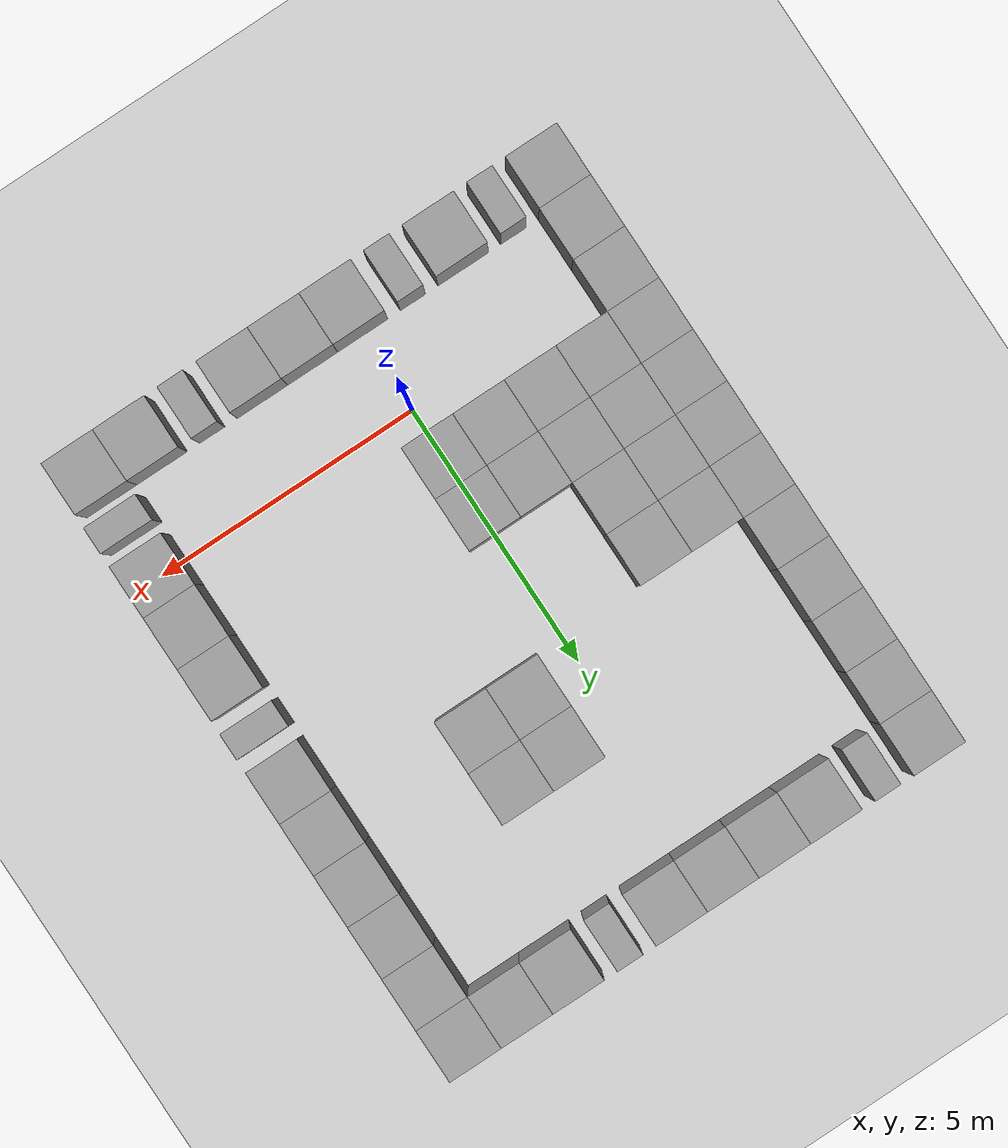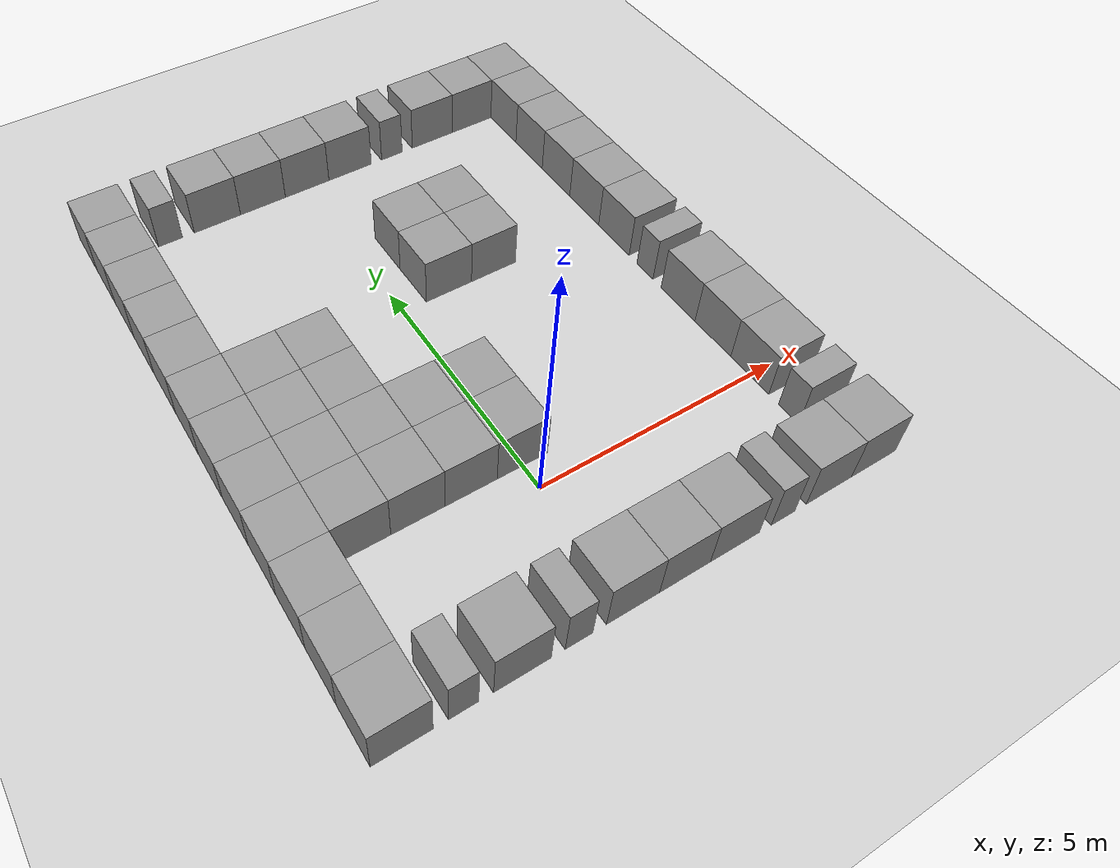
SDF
<sdf version="1.4">
 <world name="default">
  <light name="sun" type="directional">
   <pose>0 0 10 0 -0 0</pose>
   <diffuse>0.8 0.8 0.8 1</diffuse>
   <specular>0.2 0.2 0.2 1</specular>
   <attenuation>
    <range>1000</range>
    <constant>0.9</constant>
    <linear>0.01</linear>
    <quadratic>0.001</quadratic>
   </attenuation>
   <direction>-0.5 0.1 -0.9</direction>
  </light>
  <model name="ground_plane">
   <static>1</static>
   <link name="link">
    <collision name="collision">
     <geometry><plane><normal>0 0 1</normal><size>100 100</size></plane></geometry>
     <surface><friction><ode><mu>100</mu><mu2>50</mu2></ode></friction></surface>
    </collision>
    <visual name="visual">
     <cast_shadows>0</cast_shadows>
     <geometry><plane><normal>0 0 1</normal><size>100 100</size></plane></geometry>
     <material>
      <script><uri>file://media/materials/scripts/gazebo.material</uri><name>Gazebo/Grey</name></script>
     </material>
    </visual>
    <velocity_decay><linear>0</linear><angular>0</angular></velocity_decay>
   </link>
  </model>
  <physics type="ode">
   <max_step_size>0.001</max_step_size>
   <real_time_factor>1</real_time_factor>
   <real_time_update_rate>1000</real_time_update_rate>
   <gravity>0 0 -9.8</gravity>
  </physics>
  <scene><ambient>0.4 0.4 0.4 1</ambient><background>0.7 0.7 0.7 1</background><shadows>1</shadows></scene>
  <spherical_coordinates>
   <surface_model>EARTH_WGS84</surface_model>
   <latitude_deg>0</latitude_deg>
   <longitude_deg>0</longitude_deg>
   <elevation>0</elevation>
   <heading_deg>0</heading_deg>
  </spherical_coordinates>
  <model name="unit_box_1">
   <pose>-4 9.00001 0.5 0 -0 0</pose>
   <link name="link">
    <inertial>
     <mass>1</mass>
     <inertia><ixx>1</ixx><ixy>0</ixy><ixz>0</ixz><iyy>1</iyy><iyz>0</iyz><izz>1</izz></inertia>
    </inertial>
    <collision name="collision"><geometry><box><size>1 1 1</size></box></geometry></collision>
    <visual name="visual">
     <geometry><box><size>1 1 1</size></box></geometry>
     <material>
      <script><uri>file://media/materials/scripts/gazebo.material</uri><name>Gazebo/Grey</name></script>
     </material>
    </visual>
    <velocity_decay><linear>0</linear><angular>0</angular></velocity_decay>
   </link>
   <static>1</static>
  </model>
  <model name="unit_box_2">
   <pose>-4 8 0.5 0 -0 2e-06</pose>
   <link name="link">
    <inertial>
     <mass>1</mass>
     <inertia><ixx>1</ixx><ixy>0</ixy><ixz>0</ixz><iyy>1</iyy><iyz>0</iyz><izz>1</izz></inertia>
    </inertial>
    <collision name="collision"><geometry><box><size>1 1 1</size></box></geometry></collision>
    <visual name="visual">
     <geometry><box><size>1 1 1</size></box></geometry>
     <material>
      <script><uri>file://media/materials/scripts/gazebo.material</uri><name>Gazebo/Grey</name></script>
     </material>
    </visual>
    <velocity_decay><linear>0</linear><angular>0</angular></velocity_decay>
   </link>
   <static>1</static>
  </model>
  <model name="unit_box_3">
   <pose>-3.99999 7 0.5 0 -0 1e-06</pose>
   <link name="link">
    <inertial>
     <mass>1</mass>
     <inertia><ixx>1</ixx><ixy>0</ixy><ixz>0</ixz><iyy>1</iyy><iyz>0</iyz><izz>1</izz></inertia>
    </inertial>
    <collision name="collision"><geometry><box><size>1 1 1</size></box></geometry></collision>
    <visual name="visual">
     <geometry><box><size>1 1 1</size></box></geometry>
     <material>
      <script><uri>file://media/materials/scripts/gazebo.material</uri><name>Gazebo/Grey</name></script>
     </material>
    </visual>
    <velocity_decay><linear>0</linear><angular>0</angular></velocity_decay>
   </link>
   <static>1</static>
  </model>
  <model name="unit_box_4">
   <pose>-4 6 0.5 0 -0 2e-06</pose>
   <link name="link">
    <inertial>
     <mass>1</mass>
     <inertia><ixx>1</ixx><ixy>0</ixy><ixz>0</ixz><iyy>1</iyy><iyz>0</iyz><izz>1</izz></inertia>
    </inertial>
    <collision name="collision"><geometry><box><size>1 1 1</size></box></geometry></collision>
    <visual name="visual">
     <geometry><box><size>1 1 1</size></box></geometry>
     <material>
      <script><uri>file://media/materials/scripts/gazebo.material</uri><name>Gazebo/Grey</name></script>
     </material>
    </visual>
    <velocity_decay><linear>0</linear><angular>0</angular></velocity_decay>
   </link>
   <static>1</static>
  </model>
  <model name="unit_box_5">
   <pose>-4 5 0.5 0 -0 2e-06</pose>
   <link name="link">
    <inertial>
     <mass>1</mass>
     <inertia><ixx>1</ixx><ixy>0</ixy><ixz>0</ixz><iyy>1</iyy><iyz>0</iyz><izz>1</izz></inertia>
    </inertial>
    <collision name="collision"><geometry><box><size>1 1 1</size></box></geometry></collision>
    <visual name="visual">
     <geometry><box><size>1 1 1</size></box></geometry>
     <material>
      <script><uri>file://media/materials/scripts/gazebo.material</uri><name>Gazebo/Grey</name></script>
     </material>
    </visual>
    <velocity_decay><linear>0</linear><angular>0</angular></velocity_decay>
   </link>
   <static>1</static>
  </model>
  <model name="unit_box_6">
   <pose>-4 4 0.5 0 -0 2e-06</pose>
   <link name="link">
    <inertial>
     <mass>1</mass>
     <inertia><ixx>1</ixx><ixy>0</ixy><ixz>0</ixz><iyy>1</iyy><iyz>0</iyz><izz>1</izz></inertia>
    </inertial>
    <collision name="collision"><geometry><box><size>1 1 1</size></box></geometry></collision>
    <visual name="visual">
     <geometry><box><size>1 1 1</size></box></geometry>
     <material>
      <script><uri>file://media/materials/scripts/gazebo.material</uri><name>Gazebo/Grey</name></script>
     </material>
    </visual>
    <velocity_decay><linear>0</linear><angular>0</angular></velocity_decay>
   </link>
   <static>1</static>
  </model>
  <model name="unit_box_7">
   <pose>-4.00001 3 0.5 0 -0 3e-06</pose>
   <link name="link">
    <inertial>
     <mass>1</mass>
     <inertia><ixx>1</ixx><ixy>0</ixy><ixz>0</ixz><iyy>1</iyy><iyz>0</iyz><izz>1</izz></inertia>
    </inertial>
    <collision name="collision"><geometry><box><size>1 1 1</size></box></geometry></collision>
    <visual name="visual">
     <geometry><box><size>1 1 1</size></box></geometry>
     <material>
      <script><uri>file://media/materials/scripts/gazebo.material</uri><name>Gazebo/Grey</name></script>
     </material>
    </visual>
    <velocity_decay><linear>0</linear><angular>0</angular></velocity_decay>
   </link>
   <static>1</static>
  </model>
  <model name="unit_box_8">
   <pose>-4.00001 1.99999 0.5 0 -0 1e-06</pose>
   <link name="link">
    <inertial>
     <mass>1</mass>
     <inertia><ixx>1</ixx><ixy>0</ixy><ixz>0</ixz><iyy>1</iyy><iyz>0</iyz><izz>1</izz></inertia>
    </inertial>
    <collision name="collision"><geometry><box><size>1 1 1</size></box></geometry></collision>
    <visual name="visual">
     <geometry><box><size>1 1 1</size></box></geometry>
     <material>
      <script><uri>file://media/materials/scripts/gazebo.material</uri><name>Gazebo/Grey</name></script>
     </material>
    </visual>
    <velocity_decay><linear>0</linear><angular>0</angular></velocity_decay>
   </link>
   <static>1</static>
  </model>
  <model name="unit_box_9">
   <pose>-4.00001 0.999992 0.5 -0 -0 -1e-06</pose>
   <link name="link">
    <inertial>
     <mass>1</mass>
     <inertia><ixx>1</ixx><ixy>0</ixy><ixz>0</ixz><iyy>1</iyy><iyz>0</iyz><izz>1</izz></inertia>
    </inertial>
    <collision name="collision"><geometry><box><size>1 1 1</size></box></geometry></collision>
    <visual name="visual">
     <geometry><box><size>1 1 1</size></box></geometry>
     <material>
      <script><uri>file://media/materials/scripts/gazebo.material</uri><name>Gazebo/Grey</name></script>
     </material>
    </visual>
    <velocity_decay><linear>0</linear><angular>0</angular></velocity_decay>
   </link>
   <static>1</static>
  </model>
  <model name="unit_box_10">
   <pose>-4.00001 -1.2e-05 0.5 0 0 -3e-06</pose>
   <link name="link">
    <inertial>
     <mass>1</mass>
     <inertia><ixx>1</ixx><ixy>0</ixy><ixz>0</ixz><iyy>1</iyy><iyz>0</iyz><izz>1</izz></inertia>
    </inertial>
    <collision name="collision"><geometry><box><size>1 1 1</size></box></geometry></collision>
    <visual name="visual">
     <geometry><box><size>1 1 1</size></box></geometry>
     <material>
      <script><uri>file://media/materials/scripts/gazebo.material</uri><name>Gazebo/Grey</name></script>
     </material>
    </visual>
    <velocity_decay><linear>0</linear><angular>0</angular></velocity_decay>
   </link>
   <static>1</static>
  </model>
  <model name="unit_box_11">
   <pose>-4 -1.00001 0.5 -0 -0 -4e-06</pose>
   <link name="link">
    <inertial>
     <mass>1</mass>
     <inertia><ixx>1</ixx><ixy>0</ixy><ixz>0</ixz><iyy>1</iyy><iyz>0</iyz><izz>1</izz></inertia>
    </inertial>
    <collision name="collision"><geometry><box><size>1 1 1</size></box></geometry></collision>
    <visual name="visual">
     <geometry><box><size>1 1 1</size></box></geometry>
     <material>
      <script><uri>file://media/materials/scripts/gazebo.material</uri><name>Gazebo/Grey</name></script>
     </material>
    </visual>
    <velocity_decay><linear>0</linear><angular>0</angular></velocity_decay>
   </link>
   <static>1</static>
  </model>
  <model name="unit_box_12">
   <pose>-4.00001 -2.00001 0.5 0 0 -4e-06</pose>
   <link name="link">
    <inertial>
     <mass>1</mass>
     <inertia><ixx>1</ixx><ixy>0</ixy><ixz>0</ixz><iyy>1</iyy><iyz>0</iyz><izz>1</izz></inertia>
    </inertial>
    <collision name="collision"><geometry><box><size>1 1 1</size></box></geometry></collision>
    <visual name="visual">
     <geometry><box><size>1 1 1</size></box></geometry>
     <material>
      <script><uri>file://media/materials/scripts/gazebo.material</uri><name>Gazebo/Grey</name></script>
     </material>
    </visual>
    <velocity_decay><linear>0</linear><angular>0</angular></velocity_decay>
   </link>
   <static>1</static>
  </model>
  <model name="unit_box_13">
   <pose>-3 -2 0.5 0 0 -4e-06</pose>
   <link name="link">
    <inertial>
     <mass>1</mass>
     <inertia><ixx>1</ixx><ixy>0</ixy><ixz>0</ixz><iyy>1</iyy><iyz>0</iyz><izz>1</izz></inertia>
    </inertial>
    <collision name="collision"><geometry><box><size>0.5 1 1</size></box></geometry></collision>
    <visual name="visual">
     <geometry><box><size>0.5 1 1</size></box></geometry>
     <material>
      <script><uri>file://media/materials/scripts/gazebo.material</uri><name>Gazebo/Grey</name></script>
     </material>
    </visual>
    <velocity_decay><linear>0</linear><angular>0</angular></velocity_decay>
   </link>
   <static>1</static>
  </model>
  <model name="unit_box_14">
   <pose>-2 -1.99999 0.5 0 0 -5e-06</pose>
   <link name="link">
    <inertial>
     <mass>1</mass>
     <inertia><ixx>1</ixx><ixy>0</ixy><ixz>0</ixz><iyy>1</iyy><iyz>0</iyz><izz>1</izz></inertia>
    </inertial>
    <collision name="collision"><geometry><box><size>1 1 1</size></box></geometry></collision>
    <visual name="visual">
     <geometry><box><size>1 1 1</size></box></geometry>
     <material>
      <script><uri>file://media/materials/scripts/gazebo.material</uri><name>Gazebo/Grey</name></script>
     </material>
    </visual>
    <velocity_decay><linear>0</linear><angular>0</angular></velocity_decay>
   </link>
   <static>1</static>
  </model>
  <model name="unit_box_15">
   <pose>-1 -1.99999 0.5 0 -0 -3e-06</pose>
   <link name="link">
    <inertial>
     <mass>1</mass>
     <inertia><ixx>1</ixx><ixy>0</ixy><ixz>0</ixz><iyy>1</iyy><iyz>0</iyz><izz>1</izz></inertia>
    </inertial>
    <collision name="collision"><geometry><box><size>0.5 1 1</size></box></geometry></collision>
    <visual name="visual">
     <geometry><box><size>0.5 1 1</size></box></geometry>
     <material>
      <script><uri>file://media/materials/scripts/gazebo.material</uri><name>Gazebo/Grey</name></script>
     </material>
    </visual>
    <velocity_decay><linear>0</linear><angular>0</angular></velocity_decay>
   </link>
   <static>1</static>
  </model>
  <model name="unit_box_16">
   <pose>-1e-06 -2 0.5 0 -0 -2e-06</pose>
   <link name="link">
    <inertial>
     <mass>1</mass>
     <inertia><ixx>1</ixx><ixy>0</ixy><ixz>0</ixz><iyy>1</iyy><iyz>0</iyz><izz>1</izz></inertia>
    </inertial>
    <collision name="collision"><geometry><box><size>1 1 1</size></box></geometry></collision>
    <visual name="visual">
     <geometry><box><size>1 1 1</size></box></geometry>
     <material>
      <script><uri>file://media/materials/scripts/gazebo.material</uri><name>Gazebo/Grey</name></script>
     </material>
    </visual>
    <velocity_decay><linear>0</linear><angular>0</angular></velocity_decay>
   </link>
   <static>1</static>
  </model>
  <model name="unit_box_17">
   <pose>1 -2.00001 0.5 0 0 -2e-06</pose>
   <link name="link">
    <inertial>
     <mass>1</mass>
     <inertia><ixx>1</ixx><ixy>0</ixy><ixz>0</ixz><iyy>1</iyy><iyz>0</iyz><izz>1</izz></inertia>
    </inertial>
    <collision name="collision"><geometry><box><size>1 1 1</size></box></geometry></collision>
    <visual name="visual">
     <geometry><box><size>1 1 1</size></box></geometry>
     <material>
      <script><uri>file://media/materials/scripts/gazebo.material</uri><name>Gazebo/Grey</name></script>
     </material>
    </visual>
    <velocity_decay><linear>0</linear><angular>0</angular></velocity_decay>
   </link>
   <static>1</static>
  </model>
  <model name="unit_box_18">
   <pose>2 -2 0.5 0 -0 -4e-06</pose>
   <link name="link">
    <inertial>
     <mass>1</mass>
     <inertia><ixx>1</ixx><ixy>0</ixy><ixz>0</ixz><iyy>1</iyy><iyz>0</iyz><izz>1</izz></inertia>
    </inertial>
    <collision name="collision"><geometry><box><size>1 1 1</size></box></geometry></collision>
    <visual name="visual">
     <geometry><box><size>1 1 1</size></box></geometry>
     <material>
      <script><uri>file://media/materials/scripts/gazebo.material</uri><name>Gazebo/Grey</name></script>
     </material>
    </visual>
    <velocity_decay><linear>0</linear><angular>0</angular></velocity_decay>
   </link>
   <static>1</static>
  </model>
  <model name="unit_box_19">
   <pose>3 -2 0.5 0 0 -5e-06</pose>
   <link name="link">
    <inertial>
     <mass>1</mass>
     <inertia><ixx>1</ixx><ixy>0</ixy><ixz>0</ixz><iyy>1</iyy><iyz>0</iyz><izz>1</izz></inertia>
    </inertial>
    <collision name="collision"><geometry><box><size>0.5 1 1</size></box></geometry></collision>
    <visual name="visual">
     <geometry><box><size>0.5 1 1</size></box></geometry>
     <material>
      <script><uri>file://media/materials/scripts/gazebo.material</uri><name>Gazebo/Grey</name></script>
     </material>
    </visual>
    <velocity_decay><linear>0</linear><angular>0</angular></velocity_decay>
   </link>
   <static>1</static>
  </model>
  <model name="unit_box_20">
   <pose>4.00001 -2 0.5 0 0 -1.1e-05</pose>
   <link name="link">
    <inertial>
     <mass>1</mass>
     <inertia><ixx>1</ixx><ixy>0</ixy><ixz>0</ixz><iyy>1</iyy><iyz>0</iyz><izz>1</izz></inertia>
    </inertial>
    <collision name="collision"><geometry><box><size>1 1 1</size></box></geometry></collision>
    <visual name="visual">
     <geometry><box><size>1 1 1</size></box></geometry>
     <material>
      <script><uri>file://media/materials/scripts/gazebo.material</uri><name>Gazebo/Grey</name></script>
     </material>
    </visual>
    <velocity_decay><linear>0</linear><angular>0</angular></velocity_decay>
   </link>
   <static>1</static>
  </model>
  <model name="unit_box_21">
   <pose>5.00001 -2.00001 0.5 0 0 -1e-05</pose>
   <link name="link">
    <inertial>
     <mass>1</mass>
     <inertia><ixx>1</ixx><ixy>0</ixy><ixz>0</ixz><iyy>1</iyy><iyz>0</iyz><izz>1</izz></inertia>
    </inertial>
    <collision name="collision"><geometry><box><size>1 1 1</size></box></geometry></collision>
    <visual name="visual">
     <geometry><box><size>1 1 1</size></box></geometry>
     <material>
      <script><uri>file://media/materials/scripts/gazebo.material</uri><name>Gazebo/Grey</name></script>
     </material>
    </visual>
    <velocity_decay><linear>0</linear><angular>0</angular></velocity_decay>
   </link>
   <static>1</static>
  </model>
  <model name="unit_box_22">
   <pose>4.99996 -1.00001 0.5 -0 -0 -9e-06</pose>
   <link name="link">
    <inertial>
     <mass>1</mass>
     <inertia><ixx>1</ixx><ixy>0</ixy><ixz>0</ixz><iyy>1</iyy><iyz>0</iyz><izz>1</izz></inertia>
    </inertial>
    <collision name="collision"><geometry><box><size>1 0.5 1</size></box></geometry></collision>
    <visual name="visual">
     <geometry><box><size>1 0.5 1</size></box></geometry>
     <material>
      <script><uri>file://media/materials/scripts/gazebo.material</uri><name>Gazebo/Grey</name></script>
     </material>
    </visual>
    <velocity_decay><linear>0</linear><angular>0</angular></velocity_decay>
   </link>
   <static>1</static>
  </model>
  <model name="unit_box_23">
   <pose>4.99998 -8e-06 0.5 0 -0 -8e-06</pose>
   <link name="link">
    <inertial>
     <mass>1</mass>
     <inertia><ixx>1</ixx><ixy>0</ixy><ixz>0</ixz><iyy>1</iyy><iyz>0</iyz><izz>1</izz></inertia>
    </inertial>
    <collision name="collision"><geometry><box><size>1 1 1</size></box></geometry></collision>
    <visual name="visual">
     <geometry><box><size>1 1 1</size></box></geometry>
     <material>
      <script><uri>file://media/materials/scripts/gazebo.material</uri><name>Gazebo/Grey</name></script>
     </material>
    </visual>
    <velocity_decay><linear>0</linear><angular>0</angular></velocity_decay>
   </link>
   <static>1</static>
  </model>
  <model name="unit_box_24">
   <pose>4.99997 0.999994 0.5 0 0 -8e-06</pose>
   <link name="link">
    <inertial>
     <mass>1</mass>
     <inertia><ixx>1</ixx><ixy>0</ixy><ixz>0</ixz><iyy>1</iyy><iyz>0</iyz><izz>1</izz></inertia>
    </inertial>
    <collision name="collision"><geometry><box><size>1 1 1</size></box></geometry></collision>
    <visual name="visual">
     <geometry><box><size>1 1 1</size></box></geometry>
     <material>
      <script><uri>file://media/materials/scripts/gazebo.material</uri><name>Gazebo/Grey</name></script>
     </material>
    </visual>
    <velocity_decay><linear>0</linear><angular>0</angular></velocity_decay>
   </link>
   <static>1</static>
  </model>
  <model name="unit_box_25">
   <pose>4.99999 2 0.5 0 0 -4e-06</pose>
   <link name="link">
    <inertial>
     <mass>1</mass>
     <inertia><ixx>1</ixx><ixy>0</ixy><ixz>0</ixz><iyy>1</iyy><iyz>0</iyz><izz>1</izz></inertia>
    </inertial>
    <collision name="collision"><geometry><box><size>1 1 1</size></box></geometry></collision>
    <visual name="visual">
     <geometry><box><size>1 1 1</size></box></geometry>
     <material>
      <script><uri>file://media/materials/scripts/gazebo.material</uri><name>Gazebo/Grey</name></script>
     </material>
    </visual>
    <velocity_decay><linear>0</linear><angular>0</angular></velocity_decay>
   </link>
   <static>1</static>
  </model>
  <model name="unit_box_26">
   <pose>4.99998 3 0.5 -0 -0 -2e-06</pose>
   <link name="link">
    <inertial>
     <mass>1</mass>
     <inertia><ixx>1</ixx><ixy>0</ixy><ixz>0</ixz><iyy>1</iyy><iyz>0</iyz><izz>1</izz></inertia>
    </inertial>
    <collision name="collision"><geometry><box><size>1 0.5 1</size></box></geometry></collision>
    <visual name="visual">
     <geometry><box><size>1 0.5 1</size></box></geometry>
     <material>
      <script><uri>file://media/materials/scripts/gazebo.material</uri><name>Gazebo/Grey</name></script>
     </material>
    </visual>
    <velocity_decay><linear>0</linear><angular>0</angular></velocity_decay>
   </link>
   <static>1</static>
  </model>
  <model name="unit_box_27">
   <pose>4.99999 4 0.5 0 0 -2e-06</pose>
   <link name="link">
    <inertial>
     <mass>1</mass>
     <inertia><ixx>1</ixx><ixy>0</ixy><ixz>0</ixz><iyy>1</iyy><iyz>0</iyz><izz>1</izz></inertia>
    </inertial>
    <collision name="collision"><geometry><box><size>1 1 1</size></box></geometry></collision>
    <visual name="visual">
     <geometry><box><size>1 1 1</size></box></geometry>
     <material>
      <script><uri>file://media/materials/scripts/gazebo.material</uri><name>Gazebo/Grey</name></script>
     </material>
    </visual>
    <velocity_decay><linear>0</linear><angular>0</angular></velocity_decay>
   </link>
   <static>1</static>
  </model>
  <model name="unit_box_28">
   <pose>4.99999 5 0.5 0 -0 -2e-06</pose>
   <link name="link">
    <inertial>
     <mass>1</mass>
     <inertia><ixx>1</ixx><ixy>0</ixy><ixz>0</ixz><iyy>1</iyy><iyz>0</iyz><izz>1</izz></inertia>
    </inertial>
    <collision name="collision"><geometry><box><size>1 1 1</size></box></geometry></collision>
    <visual name="visual">
     <geometry><box><size>1 1 1</size></box></geometry>
     <material>
      <script><uri>file://media/materials/scripts/gazebo.material</uri><name>Gazebo/Grey</name></script>
     </material>
    </visual>
    <velocity_decay><linear>0</linear><angular>0</angular></velocity_decay>
   </link>
   <static>1</static>
  </model>
  <model name="unit_box_29">
   <pose>5.00001 6 0.5 0 0 -2e-06</pose>
   <link name="link">
    <inertial>
     <mass>1</mass>
     <inertia><ixx>1</ixx><ixy>0</ixy><ixz>0</ixz><iyy>1</iyy><iyz>0</iyz><izz>1</izz></inertia>
    </inertial>
    <collision name="collision"><geometry><box><size>1 1 1</size></box></geometry></collision>
    <visual name="visual">
     <geometry><box><size>1 1 1</size></box></geometry>
     <material>
      <script><uri>file://media/materials/scripts/gazebo.material</uri><name>Gazebo/Grey</name></script>
     </material>
    </visual>
    <velocity_decay><linear>0</linear><angular>0</angular></velocity_decay>
   </link>
   <static>1</static>
  </model>
  <model name="unit_box_30">
   <pose>5 7 0.5 0 -0 -3e-06</pose>
   <link name="link">
    <inertial>
     <mass>1</mass>
     <inertia><ixx>1</ixx><ixy>0</ixy><ixz>0</ixz><iyy>1</iyy><iyz>0</iyz><izz>1</izz></inertia>
    </inertial>
    <collision name="collision"><geometry><box><size>1 1 1</size></box></geometry></collision>
    <visual name="visual">
     <geometry><box><size>1 1 1</size></box></geometry>
     <material>
      <script><uri>file://media/materials/scripts/gazebo.material</uri><name>Gazebo/Grey</name></script>
     </material>
    </visual>
    <velocity_decay><linear>0</linear><angular>0</angular></velocity_decay>
   </link>
   <static>1</static>
  </model>
  <model name="unit_box_31">
   <pose>5 8.00001 0.5 0 0 -7e-06</pose>
   <link name="link">
    <inertial>
     <mass>1</mass>
     <inertia><ixx>1</ixx><ixy>0</ixy><ixz>0</ixz><iyy>1</iyy><iyz>0</iyz><izz>1</izz></inertia>
    </inertial>
    <collision name="collision"><geometry><box><size>1 1 1</size></box></geometry></collision>
    <visual name="visual">
     <geometry><box><size>1 1 1</size></box></geometry>
     <material>
      <script><uri>file://media/materials/scripts/gazebo.material</uri><name>Gazebo/Grey</name></script>
     </material>
    </visual>
    <velocity_decay><linear>0</linear><angular>0</angular></velocity_decay>
   </link>
   <static>1</static>
  </model>
  <model name="unit_box_32">
   <pose>5.00001 9.00001 0.5 0 0 -8e-06</pose>
   <link name="link">
    <inertial>
     <mass>1</mass>
     <inertia><ixx>1</ixx><ixy>0</ixy><ixz>0</ixz><iyy>1</iyy><iyz>0</iyz><izz>1</izz></inertia>
    </inertial>
    <collision name="collision"><geometry><box><size>1 1 1</size></box></geometry></collision>
    <visual name="visual">
     <geometry><box><size>1 1 1</size></box></geometry>
     <material>
      <script><uri>file://media/materials/scripts/gazebo.material</uri><name>Gazebo/Grey</name></script>
     </material>
    </visual>
    <velocity_decay><linear>0</linear><angular>0</angular></velocity_decay>
   </link>
   <static>1</static>
  </model>
  <model name="unit_box_33">
   <pose>-3 9.00001 0.5 0 -0 0</pose>
   <link name="link">
    <inertial>
     <mass>1</mass>
     <inertia><ixx>1</ixx><ixy>0</ixy><ixz>0</ixz><iyy>1</iyy><iyz>0</iyz><izz>1</izz></inertia>
    </inertial>
    <collision name="collision"><geometry><box><size>0.5 1 1</size></box></geometry></collision>
    <visual name="visual">
     <geometry><box><size>0.5 1 1</size></box></geometry>
     <material>
      <script><uri>file://media/materials/scripts/gazebo.material</uri><name>Gazebo/Grey</name></script>
     </material>
    </visual>
    <velocity_decay><linear>0</linear><angular>0</angular></velocity_decay>
   </link>
   <static>1</static>
  </model>
  <model name="unit_box_34">
   <pose>-2 9 0.5 0 -0 0</pose>
   <link name="link">
    <inertial>
     <mass>1</mass>
     <inertia><ixx>1</ixx><ixy>0</ixy><ixz>0</ixz><iyy>1</iyy><iyz>0</iyz><izz>1</izz></inertia>
    </inertial>
    <collision name="collision"><geometry><box><size>1 1 1</size></box></geometry></collision>
    <visual name="visual">
     <geometry><box><size>1 1 1</size></box></geometry>
     <material>
      <script><uri>file://media/materials/scripts/gazebo.material</uri><name>Gazebo/Grey</name></script>
     </material>
    </visual>
    <velocity_decay><linear>0</linear><angular>0</angular></velocity_decay>
   </link>
   <static>1</static>
  </model>
  <model name="unit_box_35">
   <pose>-1 9 0.5 0 -0 0</pose>
   <link name="link">
    <inertial>
     <mass>1</mass>
     <inertia><ixx>1</ixx><ixy>0</ixy><ixz>0</ixz><iyy>1</iyy><iyz>0</iyz><izz>1</izz></inertia>
    </inertial>
    <collision name="collision"><geometry><box><size>1 1 1</size></box></geometry></collision>
    <visual name="visual">
     <geometry><box><size>1 1 1</size></box></geometry>
     <material>
      <script><uri>file://media/materials/scripts/gazebo.material</uri><name>Gazebo/Grey</name></script>
     </material>
    </visual>
    <velocity_decay><linear>0</linear><angular>0</angular></velocity_decay>
   </link>
   <static>1</static>
  </model>
  <model name="unit_box_36">
   <pose>2e-06 8.99999 0.5 0 -0 -1e-06</pose>
   <link name="link">
    <inertial>
     <mass>1</mass>
     <inertia><ixx>1</ixx><ixy>0</ixy><ixz>0</ixz><iyy>1</iyy><iyz>0</iyz><izz>1</izz></inertia>
    </inertial>
    <collision name="collision"><geometry><box><size>1 1 1</size></box></geometry></collision>
    <visual name="visual">
     <geometry><box><size>1 1 1</size></box></geometry>
     <material>
      <script><uri>file://media/materials/scripts/gazebo.material</uri><name>Gazebo/Grey</name></script>
     </material>
    </visual>
    <velocity_decay><linear>0</linear><angular>0</angular></velocity_decay>
   </link>
   <static>1</static>
  </model>
  <model name="unit_box_37">
   <pose>1 9 0.5 0 -0 -2e-06</pose>
   <link name="link">
    <inertial>
     <mass>1</mass>
     <inertia><ixx>1</ixx><ixy>0</ixy><ixz>0</ixz><iyy>1</iyy><iyz>0</iyz><izz>1</izz></inertia>
    </inertial>
    <collision name="collision"><geometry><box><size>1 1 1</size></box></geometry></collision>
    <visual name="visual">
     <geometry><box><size>1 1 1</size></box></geometry>
     <material>
      <script><uri>file://media/materials/scripts/gazebo.material</uri><name>Gazebo/Grey</name></script>
     </material>
    </visual>
    <velocity_decay><linear>0</linear><angular>0</angular></velocity_decay>
   </link>
   <static>1</static>
  </model>
  <model name="unit_box_38">
   <pose>2 9 0.5 -0 -0 -4e-06</pose>
   <link name="link">
    <inertial>
     <mass>1</mass>
     <inertia><ixx>1</ixx><ixy>0</ixy><ixz>0</ixz><iyy>1</iyy><iyz>0</iyz><izz>1</izz></inertia>
    </inertial>
    <collision name="collision"><geometry><box><size>0.5 1 1</size></box></geometry></collision>
    <visual name="visual">
     <geometry><box><size>0.5 1 1</size></box></geometry>
     <material>
      <script><uri>file://media/materials/scripts/gazebo.material</uri><name>Gazebo/Grey</name></script>
     </material>
    </visual>
    <velocity_decay><linear>0</linear><angular>0</angular></velocity_decay>
   </link>
   <static>1</static>
  </model>
  <model name="unit_box_39">
   <pose>3.00001 8.99999 0.5 0 0 -7e-06</pose>
   <link name="link">
    <inertial>
     <mass>1</mass>
     <inertia><ixx>1</ixx><ixy>0</ixy><ixz>0</ixz><iyy>1</iyy><iyz>0</iyz><izz>1</izz></inertia>
    </inertial>
    <collision name="collision"><geometry><box><size>1 1 1</size></box></geometry></collision>
    <visual name="visual">
     <geometry><box><size>1 1 1</size></box></geometry>
     <material>
      <script><uri>file://media/materials/scripts/gazebo.material</uri><name>Gazebo/Grey</name></script>
     </material>
    </visual>
    <velocity_decay><linear>0</linear><angular>0</angular></velocity_decay>
   </link>
   <static>1</static>
  </model>
  <model name="unit_box_40">
   <pose>4.00001 8.99999 0.5 0 0 -7e-06</pose>
   <link name="link">
    <inertial>
     <mass>1</mass>
     <inertia><ixx>1</ixx><ixy>0</ixy><ixz>0</ixz><iyy>1</iyy><iyz>0</iyz><izz>1</izz></inertia>
    </inertial>
    <collision name="collision"><geometry><box><size>1 1 1</size></box></geometry></collision>
    <visual name="visual">
     <geometry><box><size>1 1 1</size></box></geometry>
     <material>
      <script><uri>file://media/materials/scripts/gazebo.material</uri><name>Gazebo/Grey</name></script>
     </material>
    </visual>
    <velocity_decay><linear>0</linear><angular>0</angular></velocity_decay>
   </link>
   <static>1</static>
  </model>
  <model name="unit_box_41">
   <pose>-3 0.999992 0.5 0 -0 1e-06</pose>
   <link name="link">
    <inertial>
     <mass>1</mass>
     <inertia><ixx>1</ixx><ixy>0</ixy><ixz>0</ixz><iyy>1</iyy><iyz>0</iyz><izz>1</izz></inertia>
    </inertial>
    <collision name="collision"><geometry><box><size>1 1 1</size></box></geometry></collision>
    <visual name="visual">
     <geometry><box><size>1 1 1</size></box></geometry>
     <material>
      <script><uri>file://media/materials/scripts/gazebo.material</uri><name>Gazebo/Grey</name></script>
     </material>
    </visual>
    <velocity_decay><linear>0</linear><angular>0</angular></velocity_decay>
   </link>
   <static>1</static>
  </model>
  <model name="unit_box_42">
   <pose>-3.00001 1.99999 0.5 0 -0 1e-06</pose>
   <link name="link">
    <inertial>
     <mass>1</mass>
     <inertia><ixx>1</ixx><ixy>0</ixy><ixz>0</ixz><iyy>1</iyy><iyz>0</iyz><izz>1</izz></inertia>
    </inertial>
    <collision name="collision"><geometry><box><size>1 1 1</size></box></geometry></collision>
    <visual name="visual">
     <geometry><box><size>1 1 1</size></box></geometry>
     <material>
      <script><uri>file://media/materials/scripts/gazebo.material</uri><name>Gazebo/Grey</name></script>
     </material>
    </visual>
    <velocity_decay><linear>0</linear><angular>0</angular></velocity_decay>
   </link>
   <static>1</static>
  </model>
  <model name="unit_box_43">
   <pose>-3 3 0.5 0 -0 3e-06</pose>
   <link name="link">
    <inertial>
     <mass>1</mass>
     <inertia><ixx>1</ixx><ixy>0</ixy><ixz>0</ixz><iyy>1</iyy><iyz>0</iyz><izz>1</izz></inertia>
    </inertial>
    <collision name="collision"><geometry><box><size>1 1 1</size></box></geometry></collision>
    <visual name="visual">
     <geometry><box><size>1 1 1</size></box></geometry>
     <material>
      <script><uri>file://media/materials/scripts/gazebo.material</uri><name>Gazebo/Grey</name></script>
     </material>
    </visual>
    <velocity_decay><linear>0</linear><angular>0</angular></velocity_decay>
   </link>
   <static>1</static>
  </model>
  <model name="unit_box_44">
   <pose>-3 4 0.5 0 -0 2e-06</pose>
   <link name="link">
    <inertial>
     <mass>1</mass>
     <inertia><ixx>1</ixx><ixy>0</ixy><ixz>0</ixz><iyy>1</iyy><iyz>0</iyz><izz>1</izz></inertia>
    </inertial>
    <collision name="collision"><geometry><box><size>1 1 1</size></box></geometry></collision>
    <visual name="visual">
     <geometry><box><size>1 1 1</size></box></geometry>
     <material>
      <script><uri>file://media/materials/scripts/gazebo.material</uri><name>Gazebo/Grey</name></script>
     </material>
    </visual>
    <velocity_decay><linear>0</linear><angular>0</angular></velocity_decay>
   </link>
   <static>1</static>
  </model>
  <model name="unit_box_45">
   <pose>-2 0.999996 0.5 0 -0 0</pose>
   <link name="link">
    <inertial>
     <mass>1</mass>
     <inertia><ixx>1</ixx><ixy>0</ixy><ixz>0</ixz><iyy>1</iyy><iyz>0</iyz><izz>1</izz></inertia>
    </inertial>
    <collision name="collision"><geometry><box><size>1 1 1</size></box></geometry></collision>
    <visual name="visual">
     <geometry><box><size>1 1 1</size></box></geometry>
     <material>
      <script><uri>file://media/materials/scripts/gazebo.material</uri><name>Gazebo/Grey</name></script>
     </material>
    </visual>
    <velocity_decay><linear>0</linear><angular>0</angular></velocity_decay>
   </link>
   <static>1</static>
  </model>
  <model name="unit_box_46">
   <pose>-2 2 0.5 0 -0 0</pose>
   <link name="link">
    <inertial>
     <mass>1</mass>
     <inertia><ixx>1</ixx><ixy>0</ixy><ixz>0</ixz><iyy>1</iyy><iyz>0</iyz><izz>1</izz></inertia>
    </inertial>
    <collision name="collision"><geometry><box><size>1 1 1</size></box></geometry></collision>
    <visual name="visual">
     <geometry><box><size>1 1 1</size></box></geometry>
     <material>
      <script><uri>file://media/materials/scripts/gazebo.material</uri><name>Gazebo/Grey</name></script>
     </material>
    </visual>
    <velocity_decay><linear>0</linear><angular>0</angular></velocity_decay>
   </link>
   <static>1</static>
  </model>
  <model name="unit_box_47">
   <pose>-2 3 0.5 0 -0 3e-06</pose>
   <link name="link">
    <inertial>
     <mass>1</mass>
     <inertia><ixx>1</ixx><ixy>0</ixy><ixz>0</ixz><iyy>1</iyy><iyz>0</iyz><izz>1</izz></inertia>
    </inertial>
    <collision name="collision"><geometry><box><size>1 1 1</size></box></geometry></collision>
    <visual name="visual">
     <geometry><box><size>1 1 1</size></box></geometry>
     <material>
      <script><uri>file://media/materials/scripts/gazebo.material</uri><name>Gazebo/Grey</name></script>
     </material>
    </visual>
    <velocity_decay><linear>0</linear><angular>0</angular></velocity_decay>
   </link>
   <static>1</static>
  </model>
  <model name="unit_box_48">
   <pose>-1.99999 4 0.5 0 -0 3e-06</pose>
   <link name="link">
    <inertial>
     <mass>1</mass>
     <inertia><ixx>1</ixx><ixy>0</ixy><ixz>0</ixz><iyy>1</iyy><iyz>0</iyz><izz>1</izz></inertia>
    </inertial>
    <collision name="collision"><geometry><box><size>1 1 1</size></box></geometry></collision>
    <visual name="visual">
     <geometry><box><size>1 1 1</size></box></geometry>
     <material>
      <script><uri>file://media/materials/scripts/gazebo.material</uri><name>Gazebo/Grey</name></script>
     </material>
    </visual>
    <velocity_decay><linear>0</linear><angular>0</angular></velocity_decay>
   </link>
   <static>1</static>
  </model>
  <model name="unit_box_49">
   <pose>-0.999994 1 0.5 0 -0 1e-06</pose>
   <link name="link">
    <inertial>
     <mass>1</mass>
     <inertia><ixx>1</ixx><ixy>0</ixy><ixz>0</ixz><iyy>1</iyy><iyz>0</iyz><izz>1</izz></inertia>
    </inertial>
    <collision name="collision"><geometry><box><size>1 1 1</size></box></geometry></collision>
    <visual name="visual">
     <geometry><box><size>1 1 1</size></box></geometry>
     <material>
      <script><uri>file://media/materials/scripts/gazebo.material</uri><name>Gazebo/Grey</name></script>
     </material>
    </visual>
    <velocity_decay><linear>0</linear><angular>0</angular></velocity_decay>
   </link>
   <static>1</static>
  </model>
  <model name="unit_box_50">
   <pose>-0.999997 2 0.5 0 -0 2e-06</pose>
   <link name="link">
    <inertial>
     <mass>1</mass>
     <inertia><ixx>1</ixx><ixy>0</ixy><ixz>0</ixz><iyy>1</iyy><iyz>0</iyz><izz>1</izz></inertia>
    </inertial>
    <collision name="collision"><geometry><box><size>1 1 1</size></box></geometry></collision>
    <visual name="visual">
     <geometry><box><size>1 1 1</size></box></geometry>
     <material>
      <script><uri>file://media/materials/scripts/gazebo.material</uri><name>Gazebo/Grey</name></script>
     </material>
    </visual>
    <velocity_decay><linear>0</linear><angular>0</angular></velocity_decay>
   </link>
   <static>1</static>
  </model>
  <model name="unit_box_51">
   <pose>6e-06 0.999998 0.5 0 -0 1e-06</pose>
   <link name="link">
    <inertial>
     <mass>1</mass>
     <inertia><ixx>1</ixx><ixy>0</ixy><ixz>0</ixz><iyy>1</iyy><iyz>0</iyz><izz>1</izz></inertia>
    </inertial>
    <collision name="collision"><geometry><box><size>1 1 1</size></box></geometry></collision>
    <visual name="visual">
     <geometry><box><size>1 1 1</size></box></geometry>
     <material>
      <script><uri>file://media/materials/scripts/gazebo.material</uri><name>Gazebo/Grey</name></script>
     </material>
    </visual>
    <velocity_decay><linear>0</linear><angular>0</angular></velocity_decay>
   </link>
   <static>1</static>
  </model>
  <model name="unit_box_52">
   <pose>6e-06 2 0.5 -0 -0 -0</pose>
   <link name="link">
    <inertial>
     <mass>1</mass>
     <inertia><ixx>1</ixx><ixy>0</ixy><ixz>0</ixz><iyy>1</iyy><iyz>0</iyz><izz>1</izz></inertia>
    </inertial>
    <collision name="collision"><geometry><box><size>1 1 1</size></box></geometry></collision>
    <visual name="visual">
     <geometry><box><size>1 1 1</size></box></geometry>
     <material>
      <script><uri>file://media/materials/scripts/gazebo.material</uri><name>Gazebo/Grey</name></script>
     </material>
    </visual>
    <velocity_decay><linear>0</linear><angular>0</angular></velocity_decay>
   </link>
   <static>1</static>
  </model>
  <model name="unit_box_53">
   <pose>2 6 0.5 0 -0 0</pose>
   <link name="link">
    <inertial>
     <mass>1</mass>
     <inertia><ixx>1</ixx><ixy>0</ixy><ixz>0</ixz><iyy>1</iyy><iyz>0</iyz><izz>1</izz></inertia>
    </inertial>
    <collision name="collision"><geometry><box><size>1 1 1</size></box></geometry></collision>
    <visual name="visual">
     <geometry><box><size>1 1 1</size></box></geometry>
     <material>
      <script><uri>file://media/materials/scripts/gazebo.material</uri><name>Gazebo/Grey</name></script>
     </material>
    </visual>
    <velocity_decay><linear>0</linear><angular>0</angular></velocity_decay>
   </link>
   <static>1</static>
  </model>
  <model name="unit_box_54">
   <pose>1 6 0.5 -0 -0 -0</pose>
   <link name="link">
    <inertial>
     <mass>1</mass>
     <inertia><ixx>1</ixx><ixy>0</ixy><ixz>0</ixz><iyy>1</iyy><iyz>0</iyz><izz>1</izz></inertia>
    </inertial>
    <collision name="collision"><geometry><box><size>1 1 1</size></box></geometry></collision>
    <visual name="visual">
     <geometry><box><size>1 1 1</size></box></geometry>
     <material>
      <script><uri>file://media/materials/scripts/gazebo.material</uri><name>Gazebo/Grey</name></script>
     </material>
    </visual>
    <velocity_decay><linear>0</linear><angular>0</angular></velocity_decay>
   </link>
   <static>1</static>
  </model>
  <model name="unit_box_55">
   <pose>1 5 0.5 0 -0 0</pose>
   <link name="link">
    <inertial>
     <mass>1</mass>
     <inertia><ixx>1</ixx><ixy>0</ixy><ixz>0</ixz><iyy>1</iyy><iyz>0</iyz><izz>1</izz></inertia>
    </inertial>
    <collision name="collision"><geometry><box><size>1 1 1</size></box></geometry></collision>
    <visual name="visual">
     <geometry><box><size>1 1 1</size></box></geometry>
     <material>
      <script><uri>file://media/materials/scripts/gazebo.material</uri><name>Gazebo/Grey</name></script>
     </material>
    </visual>
    <velocity_decay><linear>0</linear><angular>0</angular></velocity_decay>
   </link>
   <static>1</static>
  </model>
  <model name="unit_box_56">
   <pose>2 5 0.5 0 -0 0</pose>
   <link name="link">
    <inertial>
     <mass>1</mass>
     <inertia><ixx>1</ixx><ixy>0</ixy><ixz>0</ixz><iyy>1</iyy><iyz>0</iyz><izz>1</izz></inertia>
    </inertial>
    <collision name="collision"><geometry><box><size>1 1 1</size></box></geometry></collision>
    <visual name="visual">
     <geometry><box><size>1 1 1</size></box></geometry>
     <material>
      <script><uri>file://media/materials/scripts/gazebo.material</uri><name>Gazebo/Grey</name></script>
     </material>
    </visual>
    <velocity_decay><linear>0</linear><angular>0</angular></velocity_decay>
   </link>
   <static>1</static>
  </model>
 </world>
</sdf>
